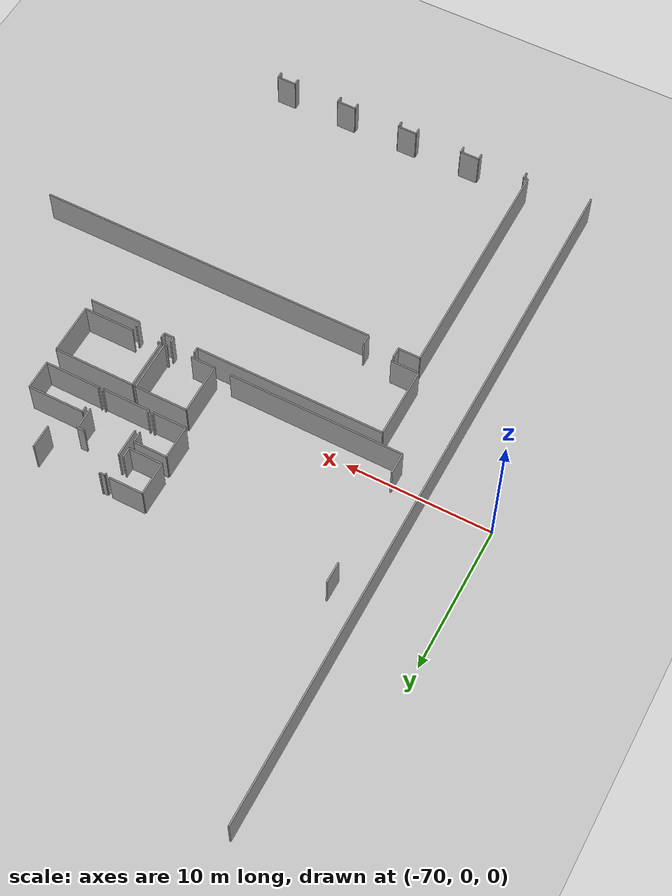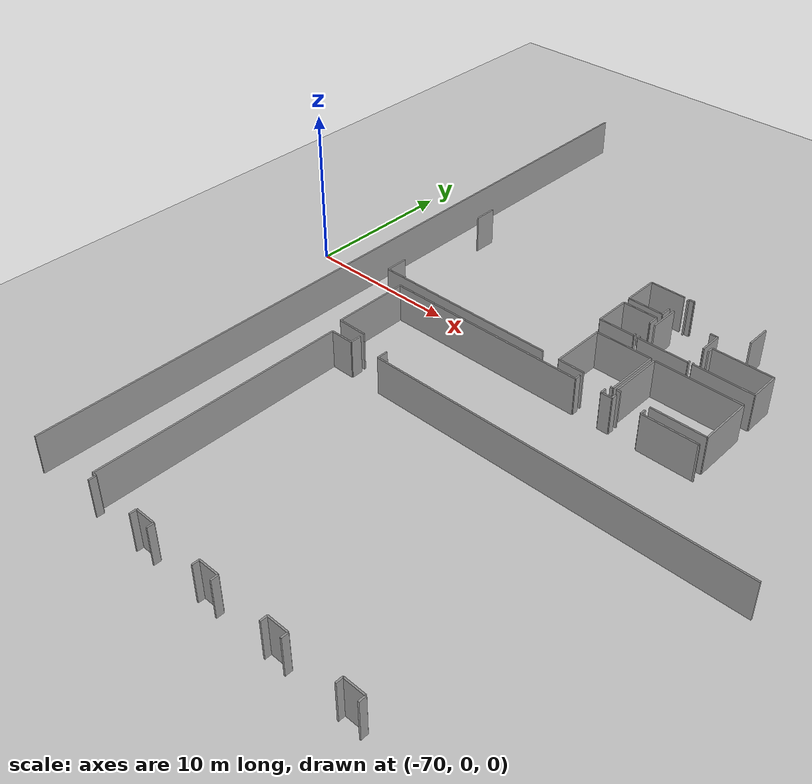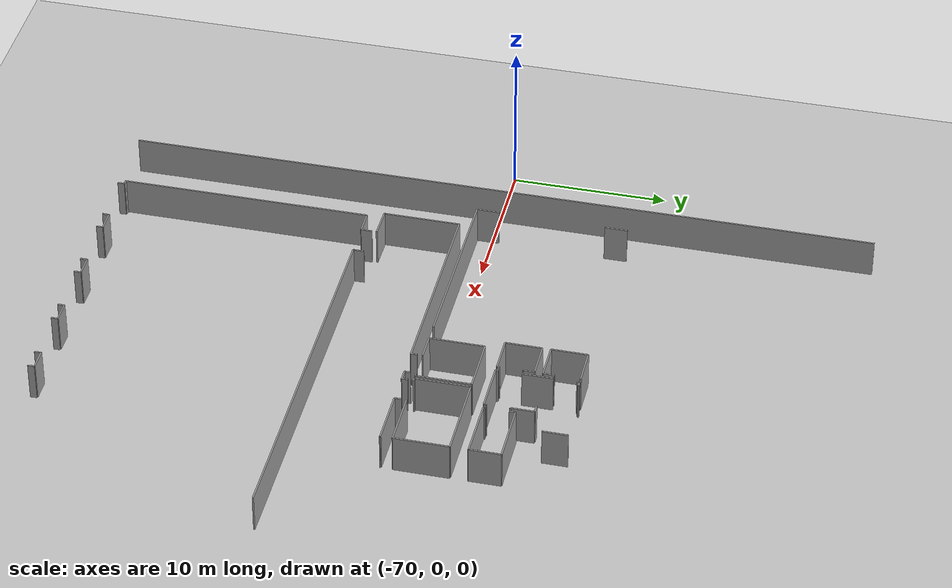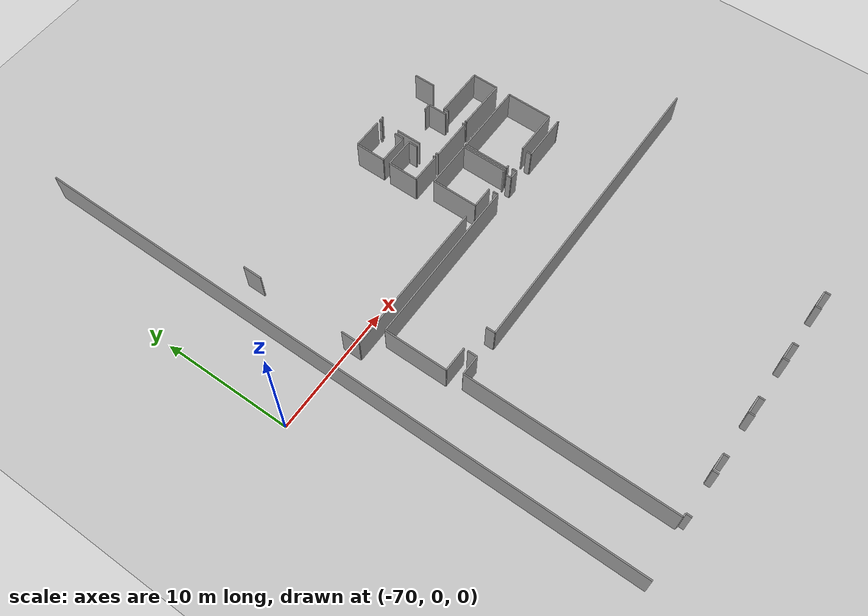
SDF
<sdf version="1.6">
 <world name="default">
  <model name="ground_plane">
   <static>1</static>
   <link name="link">
    <collision name="collision">
     <geometry><plane><normal>0 0 1</normal><size>100 100</size></plane></geometry>
     <surface><friction><ode><mu>100</mu><mu2>50</mu2></ode></friction></surface>
    </collision>
    <visual name="visual">
     <cast_shadows>0</cast_shadows>
     <geometry><plane><normal>0 0 1</normal><size>100 100</size></plane></geometry>
     <material>
      <script><uri>file://media/materials/scripts/gazebo.material</uri><name>Gazebo/Grey</name></script>
     </material>
    </visual>
   </link>
  </model>
  <model name="0510032197_A_40_1_105">
   <static>1</static>
   <link name="Wall_326">
    <collision name="Wall_326_Collision">
     <geometry><box><size>3.50271355762 0.1 2.5</size></box></geometry>
     <pose>1.75135677881 0 1.25 0 0 0</pose>
    </collision>
    <visual name="Wall_326_Visual">
     <pose>1.75135677881 0 1.25 0 0 0</pose>
     <geometry><box><size>3.50271355762 0.1 2.5</size></box></geometry>
     <material>
      <script><uri>file://media/materials/scripts/gazebo.material</uri><name>Gazebo/Grey</name></script>
      <ambient>1 1 1 1</ambient>
     </material>
    </visual>
    <pose>15.3137431843 -25.2381194474 0 0 0 1.57079632679</pose>
   </link>
   <link name="Wall_327">
    <collision name="Wall_327_Collision">
     <geometry><box><size>3.62498252393 0.1 2.5</size></box></geometry>
     <pose>1.81249126196 0 1.25 0 0 0</pose>
    </collision>
    <visual name="Wall_327_Visual">
     <pose>1.81249126196 0 1.25 0 0 0</pose>
     <geometry><box><size>3.62498252393 0.1 2.5</size></box></geometry>
     <material>
      <script><uri>file://media/materials/scripts/gazebo.material</uri><name>Gazebo/Grey</name></script>
      <ambient>1 1 1 1</ambient>
     </material>
    </visual>
    <pose>15.3137431843 -21.7354058898 0 0 0 0.0</pose>
   </link>
   <link name="Wall_328">
    <collision name="Wall_328_Collision">
     <geometry><box><size>3.51326275118 0.1 2.5</size></box></geometry>
     <pose>1.75663137559 0 1.25 0 0 0</pose>
    </collision>
    <visual name="Wall_328_Visual">
     <pose>1.75663137559 0 1.25 0 0 0</pose>
     <geometry><box><size>3.51326275118 0.1 2.5</size></box></geometry>
     <material>
      <script><uri>file://media/materials/scripts/gazebo.material</uri><name>Gazebo/Grey</name></script>
      <ambient>1 1 1 1</ambient>
     </material>
    </visual>
    <pose>18.9387257083 -21.7354058898 0 0 0 -1.57079632679</pose>
   </link>
   <link name="Wall_329">
    <collision name="Wall_329_Collision">
     <geometry><box><size>0.174760736664 0.1 2.5</size></box></geometry>
     <pose>0.0873803683321 0 1.25 0 0 0</pose>
    </collision>
    <visual name="Wall_329_Visual">
     <pose>0.0873803683321 0 1.25 0 0 0</pose>
     <geometry><box><size>0.174760736664 0.1 2.5</size></box></geometry>
     <material>
      <script><uri>file://media/materials/scripts/gazebo.material</uri><name>Gazebo/Grey</name></script>
      <ambient>1 1 1 1</ambient>
     </material>
    </visual>
    <pose>18.9387257083 -25.2486686409 0 0 0 3.14159265359</pose>
   </link>
   <link name="Wall_330">
    <collision name="Wall_330_Collision">
     <geometry><box><size>1.68345556729 0.1 2.5</size></box></geometry>
     <pose>0.841727783643 0 1.25 0 0 0</pose>
    </collision>
    <visual name="Wall_330_Visual">
     <pose>0.841727783643 0 1.25 0 0 0</pose>
     <geometry><box><size>1.68345556729 0.1 2.5</size></box></geometry>
     <material>
      <script><uri>file://media/materials/scripts/gazebo.material</uri><name>Gazebo/Grey</name></script>
      <ambient>1 1 1 1</ambient>
     </material>
    </visual>
    <pose>16.9971656986 -25.2486686409 0 0 0 3.13532621995</pose>
   </link>
   <link name="Wall_331">
    <collision name="Wall_331_Collision">
     <geometry><box><size>3.4837758487 0.1 2.5</size></box></geometry>
     <pose>1.74188792435 0 1.25 0 0 0</pose>
    </collision>
    <visual name="Wall_331_Visual">
     <pose>1.74188792435 0 1.25 0 0 0</pose>
     <geometry><box><size>3.4837758487 0.1 2.5</size></box></geometry>
     <material>
      <script><uri>file://media/materials/scripts/gazebo.material</uri><name>Gazebo/Grey</name></script>
      <ambient>1 1 1 1</ambient>
     </material>
    </visual>
    <pose>19.1816113575 -25.2322729064 0 0 0 1.57079632679</pose>
   </link>
   <link name="Wall_332">
    <collision name="Wall_332_Collision">
     <geometry><box><size>5.5500197003 0.1 2.5</size></box></geometry>
     <pose>2.77500985015 0 1.25 0 0 0</pose>
    </collision>
    <visual name="Wall_332_Visual">
     <pose>2.77500985015 0 1.25 0 0 0</pose>
     <geometry><box><size>5.5500197003 0.1 2.5</size></box></geometry>
     <material>
      <script><uri>file://media/materials/scripts/gazebo.material</uri><name>Gazebo/Grey</name></script>
      <ambient>1 1 1 1</ambient>
     </material>
    </visual>
    <pose>19.1816113575 -21.7484970577 0 0 0 0.0</pose>
   </link>
   <link name="Wall_333">
    <collision name="Wall_333_Collision">
     <geometry><box><size>3.48097967692 0.1 2.5</size></box></geometry>
     <pose>1.74048983846 0 1.25 0 0 0</pose>
    </collision>
    <visual name="Wall_333_Visual">
     <pose>1.74048983846 0 1.25 0 0 0</pose>
     <geometry><box><size>3.48097967692 0.1 2.5</size></box></geometry>
     <material>
      <script><uri>file://media/materials/scripts/gazebo.material</uri><name>Gazebo/Grey</name></script>
      <ambient>1 1 1 1</ambient>
     </material>
    </visual>
    <pose>24.7316310578 -21.7484970577 0 0 0 -1.57079632679</pose>
   </link>
   <link name="Wall_334">
    <collision name="Wall_334_Collision">
     <geometry><box><size>3.4880972051 0.1 2.5</size></box></geometry>
     <pose>1.74404860255 0 1.25 0 0 0</pose>
    </collision>
    <visual name="Wall_334_Visual">
     <pose>1.74404860255 0 1.25 0 0 0</pose>
     <geometry><box><size>3.4880972051 0.1 2.5</size></box></geometry>
     <material>
      <script><uri>file://media/materials/scripts/gazebo.material</uri><name>Gazebo/Grey</name></script>
      <ambient>1 1 1 1</ambient>
     </material>
    </visual>
    <pose>24.7316310578 -25.2294767346 0 0 0 3.14159265359</pose>
   </link>
   <link name="Wall_335">
    <collision name="Wall_335_Collision">
     <geometry><box><size>0.233878355983 0.1 2.5</size></box></geometry>
     <pose>0.116939177992 0 1.25 0 0 0</pose>
    </collision>
    <visual name="Wall_335_Visual">
     <pose>0.116939177992 0 1.25 0 0 0</pose>
     <geometry><box><size>0.233878355983 0.1 2.5</size></box></geometry>
     <material>
      <script><uri>file://media/materials/scripts/gazebo.material</uri><name>Gazebo/Grey</name></script>
      <ambient>1 1 1 1</ambient>
     </material>
    </visual>
    <pose>19.4154729979 -25.2294767346 0 0 0 -3.12963670156</pose>
   </link>
   <link name="Wall_336">
    <collision name="Wall_336_Collision">
     <geometry><box><size>16.0009659503 0.1 2.5</size></box></geometry>
     <pose>8.00048297513 0 1.25 0 0 0</pose>
    </collision>
    <visual name="Wall_336_Visual">
     <pose>8.00048297513 0 1.25 0 0 0</pose>
     <geometry><box><size>16.0009659503 0.1 2.5</size></box></geometry>
     <material>
      <script><uri>file://media/materials/scripts/gazebo.material</uri><name>Gazebo/Grey</name></script>
      <ambient>1 1 1 1</ambient>
     </material>
    </visual>
    <pose>4.3704165025 -47.8954994344 0 0 0 1.57079632679</pose>
   </link>
   <link name="Wall_337">
    <collision name="Wall_337_Collision">
     <geometry><box><size>1.50243394044 0.1 2.5</size></box></geometry>
     <pose>0.751216970221 0 1.25 0 0 0</pose>
    </collision>
    <visual name="Wall_337_Visual">
     <pose>0.751216970221 0 1.25 0 0 0</pose>
     <geometry><box><size>1.50243394044 0.1 2.5</size></box></geometry>
     <material>
      <script><uri>file://media/materials/scripts/gazebo.material</uri><name>Gazebo/Grey</name></script>
      <ambient>1 1 1 1</ambient>
     </material>
    </visual>
    <pose>4.3704165025 -31.8945334842 0 0 0 0.0</pose>
   </link>
   <link name="Wall_338">
    <collision name="Wall_338_Collision">
     <geometry><box><size>0.707431462017 0.1 2.5</size></box></geometry>
     <pose>0.353715731008 0 1.25 0 0 0</pose>
    </collision>
    <visual name="Wall_338_Visual">
     <pose>0.353715731008 0 1.25 0 0 0</pose>
     <geometry><box><size>0.707431462017 0.1 2.5</size></box></geometry>
     <material>
      <script><uri>file://media/materials/scripts/gazebo.material</uri><name>Gazebo/Grey</name></script>
      <ambient>1 1 1 1</ambient>
     </material>
    </visual>
    <pose>5.87285044294 -31.8945334842 0 0 0 1.57079632679</pose>
   </link>
   <link name="Wall_339">
    <collision name="Wall_339_Collision">
     <geometry><box><size>0.696373873588 0.1 2.5</size></box></geometry>
     <pose>0.348186936794 0 1.25 0 0 0</pose>
    </collision>
    <visual name="Wall_339_Visual">
     <pose>0.348186936794 0 1.25 0 0 0</pose>
     <geometry><box><size>0.696373873588 0.1 2.5</size></box></geometry>
     <material>
      <script><uri>file://media/materials/scripts/gazebo.material</uri><name>Gazebo/Grey</name></script>
      <ambient>1 1 1 1</ambient>
     </material>
    </visual>
    <pose>7.96718311112 -31.1871020221 0 0 0 -1.57079632679</pose>
   </link>
   <link name="Wall_340">
    <collision name="Wall_340_Collision">
     <geometry><box><size>23.6812872558 0.1 2.5</size></box></geometry>
     <pose>11.8406436279 0 1.25 0 0 0</pose>
    </collision>
    <visual name="Wall_340_Visual">
     <pose>11.8406436279 0 1.25 0 0 0</pose>
     <geometry><box><size>23.6812872558 0.1 2.5</size></box></geometry>
     <material>
      <script><uri>file://media/materials/scripts/gazebo.material</uri><name>Gazebo/Grey</name></script>
      <ambient>1 1 1 1</ambient>
     </material>
    </visual>
    <pose>7.96718311112 -31.8834758957 0 0 0 0.0</pose>
   </link>
   <link name="Wall_350">
    <collision name="Wall_350_Collision">
     <geometry><box><size>0.428958171812 0.1 2.5</size></box></geometry>
     <pose>0.214479085906 0 1.25 0 0 0</pose>
    </collision>
    <visual name="Wall_350_Visual">
     <pose>0.214479085906 0 1.25 0 0 0</pose>
     <geometry><box><size>0.428958171812 0.1 2.5</size></box></geometry>
     <material>
      <script><uri>file://media/materials/scripts/gazebo.material</uri><name>Gazebo/Grey</name></script>
      <ambient>1 1 1 1</ambient>
     </material>
    </visual>
    <pose>23.2586840199 -48.3392010575 0 0 0 1.57079632679</pose>
   </link>
   <link name="Wall_351">
    <collision name="Wall_351_Collision">
     <geometry><box><size>1.3169969115 0.1 2.5</size></box></geometry>
     <pose>0.658498455751 0 1.25 0 0 0</pose>
    </collision>
    <visual name="Wall_351_Visual">
     <pose>0.658498455751 0 1.25 0 0 0</pose>
     <geometry><box><size>1.3169969115 0.1 2.5</size></box></geometry>
     <material>
      <script><uri>file://media/materials/scripts/gazebo.material</uri><name>Gazebo/Grey</name></script>
      <ambient>1 1 1 1</ambient>
     </material>
    </visual>
    <pose>23.2586840199 -47.9102428856 0 0 0 3.14159265359</pose>
   </link>
   <link name="Wall_352">
    <collision name="Wall_352_Collision">
     <geometry><box><size>0.427941382071 0.1 2.5</size></box></geometry>
     <pose>0.213970691036 0 1.25 0 0 0</pose>
    </collision>
    <visual name="Wall_352_Visual">
     <pose>0.213970691036 0 1.25 0 0 0</pose>
     <geometry><box><size>0.427941382071 0.1 2.5</size></box></geometry>
     <material>
      <script><uri>file://media/materials/scripts/gazebo.material</uri><name>Gazebo/Grey</name></script>
      <ambient>1 1 1 1</ambient>
     </material>
    </visual>
    <pose>21.9416871084 -47.9102428856 0 0 0 -1.57079632679</pose>
   </link>
   <link name="Wall_353">
    <collision name="Wall_353_Collision">
     <geometry><box><size>0.419679965429 0.1 2.5</size></box></geometry>
     <pose>0.209839982715 0 1.25 0 0 0</pose>
    </collision>
    <visual name="Wall_353_Visual">
     <pose>0.209839982715 0 1.25 0 0 0</pose>
     <geometry><box><size>0.419679965429 0.1 2.5</size></box></geometry>
     <material>
      <script><uri>file://media/materials/scripts/gazebo.material</uri><name>Gazebo/Grey</name></script>
      <ambient>1 1 1 1</ambient>
     </material>
    </visual>
    <pose>18.6212331118 -48.3381842677 0 0 0 1.57079632679</pose>
   </link>
   <link name="Wall_354">
    <collision name="Wall_354_Collision">
     <geometry><box><size>1.32055567559 0.1 2.5</size></box></geometry>
     <pose>0.660277837797 0 1.25 0 0 0</pose>
    </collision>
    <visual name="Wall_354_Visual">
     <pose>0.660277837797 0 1.25 0 0 0</pose>
     <geometry><box><size>1.32055567559 0.1 2.5</size></box></geometry>
     <material>
      <script><uri>file://media/materials/scripts/gazebo.material</uri><name>Gazebo/Grey</name></script>
      <ambient>1 1 1 1</ambient>
     </material>
    </visual>
    <pose>18.6212331118 -47.9185043023 0 0 0 3.14159265359</pose>
   </link>
   <link name="Wall_355">
    <collision name="Wall_355_Collision">
     <geometry><box><size>0.427941382071 0.1 2.5</size></box></geometry>
     <pose>0.213970691036 0 1.25 0 0 0</pose>
    </collision>
    <visual name="Wall_355_Visual">
     <pose>0.213970691036 0 1.25 0 0 0</pose>
     <geometry><box><size>0.427941382071 0.1 2.5</size></box></geometry>
     <material>
      <script><uri>file://media/materials/scripts/gazebo.material</uri><name>Gazebo/Grey</name></script>
      <ambient>1 1 1 1</ambient>
     </material>
    </visual>
    <pose>17.3006774362 -47.9185043023 0 0 0 -1.57079632679</pose>
   </link>
   <link name="Wall_356">
    <collision name="Wall_356_Collision">
     <geometry><box><size>0.444591314074 0.1 2.5</size></box></geometry>
     <pose>0.222295657037 0 1.25 0 0 0</pose>
    </collision>
    <visual name="Wall_356_Visual">
     <pose>0.222295657037 0 1.25 0 0 0</pose>
     <geometry><box><size>0.444591314074 0.1 2.5</size></box></geometry>
     <material>
      <script><uri>file://media/materials/scripts/gazebo.material</uri><name>Gazebo/Grey</name></script>
      <ambient>1 1 1 1</ambient>
     </material>
    </visual>
    <pose>13.9725975165 -48.3464456844 0 0 0 1.57079632679</pose>
   </link>
   <link name="Wall_357">
    <collision name="Wall_357_Collision">
     <geometry><box><size>1.31712401022 0.1 2.5</size></box></geometry>
     <pose>0.658562005109 0 1.25 0 0 0</pose>
    </collision>
    <visual name="Wall_357_Visual">
     <pose>0.658562005109 0 1.25 0 0 0</pose>
     <geometry><box><size>1.31712401022 0.1 2.5</size></box></geometry>
     <material>
      <script><uri>file://media/materials/scripts/gazebo.material</uri><name>Gazebo/Grey</name></script>
      <ambient>1 1 1 1</ambient>
     </material>
    </visual>
    <pose>13.9725975165 -47.9018543703 0 0 0 3.14159265359</pose>
   </link>
   <link name="Wall_358">
    <collision name="Wall_358_Collision">
     <geometry><box><size>0.440397056394 0.1 2.5</size></box></geometry>
     <pose>0.220198528197 0 1.25 0 0 0</pose>
    </collision>
    <visual name="Wall_358_Visual">
     <pose>0.220198528197 0 1.25 0 0 0</pose>
     <geometry><box><size>0.440397056394 0.1 2.5</size></box></geometry>
     <material>
      <script><uri>file://media/materials/scripts/gazebo.material</uri><name>Gazebo/Grey</name></script>
      <ambient>1 1 1 1</ambient>
     </material>
    </visual>
    <pose>12.6554735063 -47.9018543703 0 0 0 -1.57079632679</pose>
   </link>
   <link name="Wall_359">
    <collision name="Wall_359_Collision">
     <geometry><box><size>0.421840643628 0.1 2.5</size></box></geometry>
     <pose>0.210920321814 0 1.25 0 0 0</pose>
    </collision>
    <visual name="Wall_359_Visual">
     <pose>0.210920321814 0 1.25 0 0 0</pose>
     <geometry><box><size>0.421840643628 0.1 2.5</size></box></geometry>
     <material>
      <script><uri>file://media/materials/scripts/gazebo.material</uri><name>Gazebo/Grey</name></script>
      <ambient>1 1 1 1</ambient>
     </material>
    </visual>
    <pose>9.30743908794 -48.3422514267 0 0 0 1.57079632679</pose>
   </link>
   <link name="Wall_360">
    <collision name="Wall_360_Collision">
     <geometry><box><size>1.31788660252 0.1 2.5</size></box></geometry>
     <pose>0.658943301262 0 1.25 0 0 0</pose>
    </collision>
    <visual name="Wall_360_Visual">
     <pose>0.658943301262 0 1.25 0 0 0</pose>
     <geometry><box><size>1.31788660252 0.1 2.5</size></box></geometry>
     <material>
      <script><uri>file://media/materials/scripts/gazebo.material</uri><name>Gazebo/Grey</name></script>
      <ambient>1 1 1 1</ambient>
     </material>
    </visual>
    <pose>9.30743908794 -47.9204107831 0 0 0 3.14159265359</pose>
   </link>
   <link name="Wall_361">
    <collision name="Wall_361_Collision">
     <geometry><box><size>0.430229158988 0.1 2.5</size></box></geometry>
     <pose>0.215114579494 0 1.25 0 0 0</pose>
    </collision>
    <visual name="Wall_361_Visual">
     <pose>0.215114579494 0 1.25 0 0 0</pose>
     <geometry><box><size>0.430229158988 0.1 2.5</size></box></geometry>
     <material>
      <script><uri>file://media/materials/scripts/gazebo.material</uri><name>Gazebo/Grey</name></script>
      <ambient>1 1 1 1</ambient>
     </material>
    </visual>
    <pose>7.98955248542 -47.9204107831 0 0 0 -1.57079632679</pose>
   </link>
   <link name="Wall_362">
    <collision name="Wall_362_Collision">
     <geometry><box><size>0.432135639751 0.1 2.5</size></box></geometry>
     <pose>0.216067819876 0 1.25 0 0 0</pose>
    </collision>
    <visual name="Wall_362_Visual">
     <pose>0.216067819876 0 1.25 0 0 0</pose>
     <geometry><box><size>0.432135639751 0.1 2.5</size></box></geometry>
     <material>
      <script><uri>file://media/materials/scripts/gazebo.material</uri><name>Gazebo/Grey</name></script>
      <ambient>1 1 1 1</ambient>
     </material>
    </visual>
    <pose>4.66566682342 -48.350639942 0 0 0 1.57079632679</pose>
   </link>
   <link name="Wall_363">
    <collision name="Wall_363_Collision">
     <geometry><box><size>0.296145194038 0.1 2.5</size></box></geometry>
     <pose>0.148072597019 0 1.25 0 0 0</pose>
    </collision>
    <visual name="Wall_363_Visual">
     <pose>0.148072597019 0 1.25 0 0 0</pose>
     <geometry><box><size>0.296145194038 0.1 2.5</size></box></geometry>
     <material>
      <script><uri>file://media/materials/scripts/gazebo.material</uri><name>Gazebo/Grey</name></script>
      <ambient>1 1 1 1</ambient>
     </material>
    </visual>
    <pose>4.66566682342 -47.9185043023 0 0 0 3.06383327087</pose>
   </link>
   <link name="Wall_395">
    <collision name="Wall_395_Collision">
     <geometry><box><size>4.88338692663 0.1 2.5</size></box></geometry>
     <pose>2.44169346331 0 1.25 0 0 0</pose>
    </collision>
    <visual name="Wall_395_Visual">
     <pose>2.44169346331 0 1.25 0 0 0</pose>
     <geometry><box><size>4.88338692663 0.1 2.5</size></box></geometry>
     <material>
      <script><uri>file://media/materials/scripts/gazebo.material</uri><name>Gazebo/Grey</name></script>
      <ambient>1 1 1 1</ambient>
     </material>
    </visual>
    <pose>3.94705067426 -30.8553743693 0 0 0 1.57079632679</pose>
   </link>
   <link name="Wall_396">
    <collision name="Wall_396_Collision">
     <geometry><box><size>13.0441413846 0.1 2.5</size></box></geometry>
     <pose>6.52207069231 0 1.25 0 0 0</pose>
    </collision>
    <visual name="Wall_396_Visual">
     <pose>6.52207069231 0 1.25 0 0 0</pose>
     <geometry><box><size>13.0441413846 0.1 2.5</size></box></geometry>
     <material>
      <script><uri>file://media/materials/scripts/gazebo.material</uri><name>Gazebo/Grey</name></script>
      <ambient>1 1 1 1</ambient>
     </material>
    </visual>
    <pose>3.94705067426 -25.9719874426 0 0 0 0.0</pose>
   </link>
   <link name="Wall_397">
    <collision name="Wall_397_Collision">
     <geometry><box><size>0.392480839868 0.1 2.5</size></box></geometry>
     <pose>0.196240419934 0 1.25 0 0 0</pose>
    </collision>
    <visual name="Wall_397_Visual">
     <pose>0.196240419934 0 1.25 0 0 0</pose>
     <geometry><box><size>0.392480839868 0.1 2.5</size></box></geometry>
     <material>
      <script><uri>file://media/materials/scripts/gazebo.material</uri><name>Gazebo/Grey</name></script>
      <ambient>1 1 1 1</ambient>
     </material>
    </visual>
    <pose>16.9911920589 -25.9719874426 0 0 0 1.57079632679</pose>
   </link>
   <link name="Wall_398">
    <collision name="Wall_398_Collision">
     <geometry><box><size>0.38294843605 0.1 2.5</size></box></geometry>
     <pose>0.191474218025 0 1.25 0 0 0</pose>
    </collision>
    <visual name="Wall_398_Visual">
     <pose>0.191474218025 0 1.25 0 0 0</pose>
     <geometry><box><size>0.38294843605 0.1 2.5</size></box></geometry>
     <material>
      <script><uri>file://media/materials/scripts/gazebo.material</uri><name>Gazebo/Grey</name></script>
      <ambient>1 1 1 1</ambient>
     </material>
    </visual>
    <pose>18.6906290116 -25.5795066028 0 0 0 -1.57079632679</pose>
   </link>
   <link name="Wall_399">
    <collision name="Wall_399_Collision">
     <geometry><box><size>0.688875049251 0.1 2.5</size></box></geometry>
     <pose>0.344437524625 0 1.25 0 0 0</pose>
    </collision>
    <visual name="Wall_399_Visual">
     <pose>0.344437524625 0 1.25 0 0 0</pose>
     <geometry><box><size>0.688875049251 0.1 2.5</size></box></geometry>
     <material>
      <script><uri>file://media/materials/scripts/gazebo.material</uri><name>Gazebo/Grey</name></script>
      <ambient>1 1 1 1</ambient>
     </material>
    </visual>
    <pose>18.6906290116 -25.9624550388 0 0 0 0.0</pose>
   </link>
   <link name="Wall_400">
    <collision name="Wall_400_Collision">
     <geometry><box><size>0.372780538644 0.1 2.5</size></box></geometry>
     <pose>0.186390269322 0 1.25 0 0 0</pose>
    </collision>
    <visual name="Wall_400_Visual">
     <pose>0.186390269322 0 1.25 0 0 0</pose>
     <geometry><box><size>0.372780538644 0.1 2.5</size></box></geometry>
     <material>
      <script><uri>file://media/materials/scripts/gazebo.material</uri><name>Gazebo/Grey</name></script>
      <ambient>1 1 1 1</ambient>
     </material>
    </visual>
    <pose>19.3795040608 -25.9624550388 0 0 0 1.57079632679</pose>
   </link>
   <link name="Wall_401">
    <collision name="Wall_401_Collision">
     <geometry><box><size>0.385617509119 0.1 2.5</size></box></geometry>
     <pose>0.19280875456 0 1.25 0 0 0</pose>
    </collision>
    <visual name="Wall_401_Visual">
     <pose>0.19280875456 0 1.25 0 0 0</pose>
     <geometry><box><size>0.385617509119 0.1 2.5</size></box></geometry>
     <material>
      <script><uri>file://media/materials/scripts/gazebo.material</uri><name>Gazebo/Grey</name></script>
      <ambient>1 1 1 1</ambient>
     </material>
    </visual>
    <pose>21.2095984952 -25.5896745002 0 0 0 -1.57079632679</pose>
   </link>
   <link name="Wall_402">
    <collision name="Wall_402_Collision">
     <geometry><box><size>3.52660811652 0.1 2.5</size></box></geometry>
     <pose>1.76330405826 0 1.25 0 0 0</pose>
    </collision>
    <visual name="Wall_402_Visual">
     <pose>1.76330405826 0 1.25 0 0 0</pose>
     <geometry><box><size>3.52660811652 0.1 2.5</size></box></geometry>
     <material>
      <script><uri>file://media/materials/scripts/gazebo.material</uri><name>Gazebo/Grey</name></script>
      <ambient>1 1 1 1</ambient>
     </material>
    </visual>
    <pose>21.2095984952 -25.9752920093 0 0 0 0.0</pose>
   </link>
   <link name="Wall_403">
    <collision name="Wall_403_Collision">
     <geometry><box><size>0.058465410084 0.1 2.5</size></box></geometry>
     <pose>0.029232705042 0 1.25 0 0 0</pose>
    </collision>
    <visual name="Wall_403_Visual">
     <pose>0.029232705042 0 1.25 0 0 0</pose>
     <geometry><box><size>0.058465410084 0.1 2.5</size></box></geometry>
     <material>
      <script><uri>file://media/materials/scripts/gazebo.material</uri><name>Gazebo/Grey</name></script>
      <ambient>1 1 1 1</ambient>
     </material>
    </visual>
    <pose>24.7362066117 -25.9752920093 0 0 0 -1.57079632679</pose>
   </link>
   <link name="Wall_414">
    <collision name="Wall_414_Collision">
     <geometry><box><size>1.92239268677 0.1 2.5</size></box></geometry>
     <pose>0.961196343386 0 1.25 0 0 0</pose>
    </collision>
    <visual name="Wall_414_Visual">
     <pose>0.961196343386 0 1.25 0 0 0</pose>
     <geometry><box><size>1.92239268677 0.1 2.5</size></box></geometry>
     <material>
      <script><uri>file://media/materials/scripts/gazebo.material</uri><name>Gazebo/Grey</name></script>
      <ambient>1 1 1 1</ambient>
     </material>
    </visual>
    <pose>5.86929167885 -30.8795231256 0 0 0 3.12903050036</pose>
   </link>
   <link name="Wall_415">
    <collision name="Wall_415_Collision">
     <geometry><box><size>1.44701889958 0.1 2.5</size></box></geometry>
     <pose>0.72350944979 0 1.25 0 0 0</pose>
    </collision>
    <visual name="Wall_415_Visual">
     <pose>0.72350944979 0 1.25 0 0 0</pose>
     <geometry><box><size>1.44701889958 0.1 2.5</size></box></geometry>
     <material>
      <script><uri>file://media/materials/scripts/gazebo.material</uri><name>Gazebo/Grey</name></script>
      <ambient>1 1 1 1</ambient>
     </material>
    </visual>
    <pose>2.19880781403 -25.1940161924 0 0 0 1.57079632679</pose>
   </link>
   <link name="Wall_416">
    <collision name="Wall_416_Collision">
     <geometry><box><size>1.46239784441 0.1 2.5</size></box></geometry>
     <pose>0.731198922203 0 1.25 0 0 0</pose>
    </collision>
    <visual name="Wall_416_Visual">
     <pose>0.731198922203 0 1.25 0 0 0</pose>
     <geometry><box><size>1.46239784441 0.1 2.5</size></box></geometry>
     <material>
      <script><uri>file://media/materials/scripts/gazebo.material</uri><name>Gazebo/Grey</name></script>
      <ambient>1 1 1 1</ambient>
     </material>
    </visual>
    <pose>2.19880781403 -16.8956138233 0 0 0 1.57079632679</pose>
   </link>
   <link name="Wall_420">
    <collision name="Wall_420_Collision">
     <geometry><box><size>12.0070743902 0.1 2.5</size></box></geometry>
     <pose>6.00353719511 0 1.25 0 0 0</pose>
    </collision>
    <visual name="Wall_420_Visual">
     <pose>6.00353719511 0 1.25 0 0 0</pose>
     <geometry><box><size>12.0070743902 0.1 2.5</size></box></geometry>
     <material>
      <script><uri>file://media/materials/scripts/gazebo.material</uri><name>Gazebo/Grey</name></script>
      <ambient>1 1 1 1</ambient>
     </material>
    </visual>
    <pose>14.2058236632 -25.2315103141 0 0 0 3.13846997929</pose>
   </link>
   <link name="Wall_421">
    <collision name="Wall_421_Collision">
     <geometry><box><size>2.3070959214 0.1 2.5</size></box></geometry>
     <pose>1.1535479607 0 1.25 0 0 0</pose>
    </collision>
    <visual name="Wall_421_Visual">
     <pose>1.1535479607 0 1.25 0 0 0</pose>
     <geometry><box><size>2.3070959214 0.1 2.5</size></box></geometry>
     <material>
      <script><uri>file://media/materials/scripts/gazebo.material</uri><name>Gazebo/Grey</name></script>
      <ambient>1 1 1 1</ambient>
     </material>
    </visual>
    <pose>14.6839690388 -17.7537843643 0 0 0 1.57079632679</pose>
   </link>
   <link name="Wall_422">
    <collision name="Wall_422_Collision">
     <geometry><box><size>2.32145807649 0.1 2.5</size></box></geometry>
     <pose>1.16072903824 0 1.25 0 0 0</pose>
    </collision>
    <visual name="Wall_422_Visual">
     <pose>1.16072903824 0 1.25 0 0 0</pose>
     <geometry><box><size>2.32145807649 0.1 2.5</size></box></geometry>
     <material>
      <script><uri>file://media/materials/scripts/gazebo.material</uri><name>Gazebo/Grey</name></script>
      <ambient>1 1 1 1</ambient>
     </material>
    </visual>
    <pose>14.6839690388 -15.4466884429 0 0 0 0.0</pose>
   </link>
   <link name="Wall_424">
    <collision name="Wall_424_Collision">
     <geometry><box><size>0.719887136339 0.1 2.5</size></box></geometry>
     <pose>0.359943568169 0 1.25 0 0 0</pose>
    </collision>
    <visual name="Wall_424_Visual">
     <pose>0.359943568169 0 1.25 0 0 0</pose>
     <geometry><box><size>0.719887136339 0.1 2.5</size></box></geometry>
     <material>
      <script><uri>file://media/materials/scripts/gazebo.material</uri><name>Gazebo/Grey</name></script>
      <ambient>1 1 1 1</ambient>
     </material>
    </visual>
    <pose>17.0054271152 -17.0504200613 0 0 0 -1.57079632679</pose>
   </link>
   <link name="Wall_425">
    <collision name="Wall_425_Collision">
     <geometry><box><size>2.32151687586 0.1 2.5</size></box></geometry>
     <pose>1.16075843793 0 1.25 0 0 0</pose>
    </collision>
    <visual name="Wall_425_Visual">
     <pose>1.16075843793 0 1.25 0 0 0</pose>
     <geometry><box><size>2.32151687586 0.1 2.5</size></box></geometry>
     <material>
      <script><uri>file://media/materials/scripts/gazebo.material</uri><name>Gazebo/Grey</name></script>
      <ambient>1 1 1 1</ambient>
     </material>
    </visual>
    <pose>17.0054271152 -17.7703071976 0 0 0 3.13447533605</pose>
   </link>
   <link name="Wall_426">
    <collision name="Wall_426_Collision">
     <geometry><box><size>2.32463554443 0.1 2.5</size></box></geometry>
     <pose>1.16231777221 0 1.25 0 0 0</pose>
    </collision>
    <visual name="Wall_426_Visual">
     <pose>1.16231777221 0 1.25 0 0 0</pose>
     <geometry><box><size>2.32463554443 0.1 2.5</size></box></geometry>
     <material>
      <script><uri>file://media/materials/scripts/gazebo.material</uri><name>Gazebo/Grey</name></script>
      <ambient>1 1 1 1</ambient>
     </material>
    </visual>
    <pose>14.69871249 -20.6155390892 0 0 0 1.57079632679</pose>
   </link>
   <link name="Wall_427">
    <collision name="Wall_427_Collision">
     <geometry><box><size>2.28523494198 0.1 2.5</size></box></geometry>
     <pose>1.14261747099 0 1.25 0 0 0</pose>
    </collision>
    <visual name="Wall_427_Visual">
     <pose>1.14261747099 0 1.25 0 0 0</pose>
     <geometry><box><size>2.28523494198 0.1 2.5</size></box></geometry>
     <material>
      <script><uri>file://media/materials/scripts/gazebo.material</uri><name>Gazebo/Grey</name></script>
      <ambient>1 1 1 1</ambient>
     </material>
    </visual>
    <pose>14.69871249 -18.2909035448 0 0 0 0.0</pose>
   </link>
   <link name="Wall_428">
    <collision name="Wall_428_Collision">
     <geometry><box><size>0.704889487665 0.1 2.5</size></box></geometry>
     <pose>0.352444743833 0 1.25 0 0 0</pose>
    </collision>
    <visual name="Wall_428_Visual">
     <pose>0.352444743833 0 1.25 0 0 0</pose>
     <geometry><box><size>0.704889487665 0.1 2.5</size></box></geometry>
     <material>
      <script><uri>file://media/materials/scripts/gazebo.material</uri><name>Gazebo/Grey</name></script>
      <ambient>1 1 1 1</ambient>
     </material>
    </visual>
    <pose>16.983947432 -18.2909035448 0 0 0 -1.57079632679</pose>
   </link>
   <link name="Wall_429">
    <collision name="Wall_429_Collision">
     <geometry><box><size>0.0217338807051 0.1 2.5</size></box></geometry>
     <pose>0.0108669403526 0 1.25 0 0 0</pose>
    </collision>
    <visual name="Wall_429_Visual">
     <pose>0.0108669403526 0 1.25 0 0 0</pose>
     <geometry><box><size>0.0217338807051 0.1 2.5</size></box></geometry>
     <material>
      <script><uri>file://media/materials/scripts/gazebo.material</uri><name>Gazebo/Grey</name></script>
      <ambient>1 1 1 1</ambient>
     </material>
    </visual>
    <pose>16.983947432 -18.9957930324 0 0 0 0.0</pose>
   </link>
   <link name="Wall_430">
    <collision name="Wall_430_Collision">
     <geometry><box><size>0.189504187903 0.1 2.5</size></box></geometry>
     <pose>0.0947520939514 0 1.25 0 0 0</pose>
    </collision>
    <visual name="Wall_430_Visual">
     <pose>0.0947520939514 0 1.25 0 0 0</pose>
     <geometry><box><size>0.189504187903 0.1 2.5</size></box></geometry>
     <material>
      <script><uri>file://media/materials/scripts/gazebo.material</uri><name>Gazebo/Grey</name></script>
      <ambient>1 1 1 1</ambient>
     </material>
    </visual>
    <pose>17.0056813127 -20.427051691 0 0 0 -1.57079632679</pose>
   </link>
   <link name="Wall_431">
    <collision name="Wall_431_Collision">
     <geometry><box><size>2.30696904676 0.1 2.5</size></box></geometry>
     <pose>1.15348452338 0 1.25 0 0 0</pose>
    </collision>
    <visual name="Wall_431_Visual">
     <pose>1.15348452338 0 1.25 0 0 0</pose>
     <geometry><box><size>2.30696904676 0.1 2.5</size></box></geometry>
     <material>
      <script><uri>file://media/materials/scripts/gazebo.material</uri><name>Gazebo/Grey</name></script>
      <ambient>1 1 1 1</ambient>
     </material>
    </visual>
    <pose>17.0056813127 -20.616555879 0 0 0 3.14115190655</pose>
   </link>
   <link name="Wall_432">
    <collision name="Wall_432_Collision">
     <geometry><box><size>0.186835114834 0.1 2.5</size></box></geometry>
     <pose>0.0934175574168 0 1.25 0 0 0</pose>
    </collision>
    <visual name="Wall_432_Visual">
     <pose>0.0934175574168 0 1.25 0 0 0</pose>
     <geometry><box><size>0.186835114834 0.1 2.5</size></box></geometry>
     <material>
      <script><uri>file://media/materials/scripts/gazebo.material</uri><name>Gazebo/Grey</name></script>
      <ambient>1 1 1 1</ambient>
     </material>
    </visual>
    <pose>17.3188525528 -20.6330787122 0 0 0 1.57079632679</pose>
   </link>
   <link name="Wall_433">
    <collision name="Wall_433_Collision">
     <geometry><box><size>1.95401568398 0.1 2.5</size></box></geometry>
     <pose>0.977007841991 0 1.25 0 0 0</pose>
    </collision>
    <visual name="Wall_433_Visual">
     <pose>0.977007841991 0 1.25 0 0 0</pose>
     <geometry><box><size>1.95401568398 0.1 2.5</size></box></geometry>
     <material>
      <script><uri>file://media/materials/scripts/gazebo.material</uri><name>Gazebo/Grey</name></script>
      <ambient>1 1 1 1</ambient>
     </material>
    </visual>
    <pose>17.3188525528 -19.0065964234 0 0 0 1.57079632679</pose>
   </link>
   <link name="Wall_434">
    <collision name="Wall_434_Collision">
     <geometry><box><size>0.164847036693 0.1 2.5</size></box></geometry>
     <pose>0.0824235183467 0 1.25 0 0 0</pose>
    </collision>
    <visual name="Wall_434_Visual">
     <pose>0.0824235183467 0 1.25 0 0 0</pose>
     <geometry><box><size>0.164847036693 0.1 2.5</size></box></geometry>
     <material>
      <script><uri>file://media/materials/scripts/gazebo.material</uri><name>Gazebo/Grey</name></script>
      <ambient>1 1 1 1</ambient>
     </material>
    </visual>
    <pose>17.3188525528 -15.6218304757 0 0 0 1.57079632679</pose>
   </link>
   <link name="Wall_435">
    <collision name="Wall_435_Collision">
     <geometry><box><size>0.329694073387 0.1 2.5</size></box></geometry>
     <pose>0.164847036693 0 1.25 0 0 0</pose>
    </collision>
    <visual name="Wall_435_Visual">
     <pose>0.164847036693 0 1.25 0 0 0</pose>
     <geometry><box><size>0.329694073387 0.1 2.5</size></box></geometry>
     <material>
      <script><uri>file://media/materials/scripts/gazebo.material</uri><name>Gazebo/Grey</name></script>
      <ambient>1 1 1 1</ambient>
     </material>
    </visual>
    <pose>17.3188525528 -15.456983439 0 0 0 0.0</pose>
   </link>
   <link name="Wall_436">
    <collision name="Wall_436_Collision">
     <geometry><box><size>0.0770218228498 0.1 2.5</size></box></geometry>
     <pose>0.0385109114249 0 1.25 0 0 0</pose>
    </collision>
    <visual name="Wall_436_Visual">
     <pose>0.0385109114249 0 1.25 0 0 0</pose>
     <geometry><box><size>0.0770218228498 0.1 2.5</size></box></geometry>
     <material>
      <script><uri>file://media/materials/scripts/gazebo.material</uri><name>Gazebo/Grey</name></script>
      <ambient>1 1 1 1</ambient>
     </material>
    </visual>
    <pose>17.6485466262 -15.456983439 0 0 0 1.57079632679</pose>
   </link>
   <link name="Wall_440">
    <collision name="Wall_440_Collision">
     <geometry><box><size>0.487550680614 0.1 2.5</size></box></geometry>
     <pose>0.243775340307 0 1.25 0 0 0</pose>
    </collision>
    <visual name="Wall_440_Visual">
     <pose>0.243775340307 0 1.25 0 0 0</pose>
     <geometry><box><size>0.487550680614 0.1 2.5</size></box></geometry>
     <material>
      <script><uri>file://media/materials/scripts/gazebo.material</uri><name>Gazebo/Grey</name></script>
      <ambient>1 1 1 1</ambient>
     </material>
    </visual>
    <pose>20.0498226973 -17.5205582176 0 0 0 0.0</pose>
   </link>
   <link name="Wall_441">
    <collision name="Wall_441_Collision">
     <geometry><box><size>1.48057296102 0.1 2.5</size></box></geometry>
     <pose>0.740286480509 0 1.25 0 0 0</pose>
    </collision>
    <visual name="Wall_441_Visual">
     <pose>0.740286480509 0 1.25 0 0 0</pose>
     <geometry><box><size>1.48057296102 0.1 2.5</size></box></geometry>
     <material>
      <script><uri>file://media/materials/scripts/gazebo.material</uri><name>Gazebo/Grey</name></script>
      <ambient>1 1 1 1</ambient>
     </material>
    </visual>
    <pose>20.5373733779 -17.5205582176 0 0 0 -1.57079632679</pose>
   </link>
   <link name="Wall_442">
    <collision name="Wall_442_Collision">
     <geometry><box><size>0.0509665857472 0.1 2.5</size></box></geometry>
     <pose>0.0254832928736 0 1.25 0 0 0</pose>
    </collision>
    <visual name="Wall_442_Visual">
     <pose>0.0254832928736 0 1.25 0 0 0</pose>
     <geometry><box><size>0.0509665857472 0.1 2.5</size></box></geometry>
     <material>
      <script><uri>file://media/materials/scripts/gazebo.material</uri><name>Gazebo/Grey</name></script>
      <ambient>1 1 1 1</ambient>
     </material>
    </visual>
    <pose>20.5373733779 -19.0011311786 0 0 0 0.0</pose>
   </link>
   <link name="Wall_443">
    <collision name="Wall_443_Collision">
     <geometry><box><size>0.181369869978 0.1 2.5</size></box></geometry>
     <pose>0.090684934989 0 1.25 0 0 0</pose>
    </collision>
    <visual name="Wall_443_Visual">
     <pose>0.090684934989 0 1.25 0 0 0</pose>
     <geometry><box><size>0.181369869978 0.1 2.5</size></box></geometry>
     <material>
      <script><uri>file://media/materials/scripts/gazebo.material</uri><name>Gazebo/Grey</name></script>
      <ambient>1 1 1 1</ambient>
     </material>
    </visual>
    <pose>20.5883399636 -20.4517088423 0 0 0 -1.57079632679</pose>
   </link>
   <link name="Wall_444">
    <collision name="Wall_444_Collision">
     <geometry><box><size>3.26948741087 0.1 2.5</size></box></geometry>
     <pose>1.63474370544 0 1.25 0 0 0</pose>
    </collision>
    <visual name="Wall_444_Visual">
     <pose>1.63474370544 0 1.25 0 0 0</pose>
     <geometry><box><size>3.26948741087 0.1 2.5</size></box></geometry>
     <material>
      <script><uri>file://media/materials/scripts/gazebo.material</uri><name>Gazebo/Grey</name></script>
      <ambient>1 1 1 1</ambient>
     </material>
    </visual>
    <pose>20.5883399636 -20.6330787122 0 0 0 3.14159265359</pose>
   </link>
   <link name="Wall_445">
    <collision name="Wall_445_Collision">
     <geometry><box><size>0.126336125268 0.1 2.5</size></box></geometry>
     <pose>0.0631680626342 0 1.25 0 0 0</pose>
    </collision>
    <visual name="Wall_445_Visual">
     <pose>0.0631680626342 0 1.25 0 0 0</pose>
     <geometry><box><size>0.126336125268 0.1 2.5</size></box></geometry>
     <material>
      <script><uri>file://media/materials/scripts/gazebo.material</uri><name>Gazebo/Grey</name></script>
      <ambient>1 1 1 1</ambient>
     </material>
    </visual>
    <pose>20.8643983782 -20.59761817 0 0 0 1.57079632679</pose>
   </link>
   <link name="Wall_446">
    <collision name="Wall_446_Collision">
     <geometry><box><size>0.384600719379 0.1 2.5</size></box></geometry>
     <pose>0.192300359689 0 1.25 0 0 0</pose>
    </collision>
    <visual name="Wall_446_Visual">
     <pose>0.192300359689 0 1.25 0 0 0</pose>
     <geometry><box><size>0.384600719379 0.1 2.5</size></box></geometry>
     <material>
      <script><uri>file://media/materials/scripts/gazebo.material</uri><name>Gazebo/Grey</name></script>
      <ambient>1 1 1 1</ambient>
     </material>
    </visual>
    <pose>20.8643983782 -19.0120616683 0 0 0 1.57079632679</pose>
   </link>
   <link name="Wall_447">
    <collision name="Wall_447_Collision">
     <geometry><box><size>3.85604799248 0.1 2.5</size></box></geometry>
     <pose>1.92802399624 0 1.25 0 0 0</pose>
    </collision>
    <visual name="Wall_447_Visual">
     <pose>1.92802399624 0 1.25 0 0 0</pose>
     <geometry><box><size>3.85604799248 0.1 2.5</size></box></geometry>
     <material>
      <script><uri>file://media/materials/scripts/gazebo.material</uri><name>Gazebo/Grey</name></script>
      <ambient>1 1 1 1</ambient>
     </material>
    </visual>
    <pose>20.8643983782 -18.6274609489 0 0 0 0.0</pose>
   </link>
   <link name="Wall_448">
    <collision name="Wall_448_Collision">
     <geometry><box><size>1.9888407326 0.1 2.5</size></box></geometry>
     <pose>0.994420366299 0 1.25 0 0 0</pose>
    </collision>
    <visual name="Wall_448_Visual">
     <pose>0.994420366299 0 1.25 0 0 0</pose>
     <geometry><box><size>1.9888407326 0.1 2.5</size></box></geometry>
     <material>
      <script><uri>file://media/materials/scripts/gazebo.material</uri><name>Gazebo/Grey</name></script>
      <ambient>1 1 1 1</ambient>
     </material>
    </visual>
    <pose>24.7204463707 -18.6274609489 0 0 0 -1.57079632679</pose>
   </link>
   <link name="Wall_449">
    <collision name="Wall_449_Collision">
     <geometry><box><size>3.85609325534 0.1 2.5</size></box></geometry>
     <pose>1.92804662767 0 1.25 0 0 0</pose>
    </collision>
    <visual name="Wall_449_Visual">
     <pose>1.92804662767 0 1.25 0 0 0</pose>
     <geometry><box><size>3.85609325534 0.1 2.5</size></box></geometry>
     <material>
      <script><uri>file://media/materials/scripts/gazebo.material</uri><name>Gazebo/Grey</name></script>
      <ambient>1 1 1 1</ambient>
     </material>
    </visual>
    <pose>24.7204463707 -20.6163016815 0 0 0 3.13674744282</pose>
   </link>
   <link name="Wall_450">
    <collision name="Wall_450_Collision">
     <geometry><box><size>1.62127124137 0.1 2.5</size></box></geometry>
     <pose>0.810635620687 0 1.25 0 0 0</pose>
    </collision>
    <visual name="Wall_450_Visual">
     <pose>0.810635620687 0 1.25 0 0 0</pose>
     <geometry><box><size>1.62127124137 0.1 2.5</size></box></geometry>
     <material>
      <script><uri>file://media/materials/scripts/gazebo.material</uri><name>Gazebo/Grey</name></script>
      <ambient>1 1 1 1</ambient>
     </material>
    </visual>
    <pose>22.1705918987 -16.7408075853 0 0 0 1.57079632679</pose>
   </link>
   <link name="Wall_551">
    <collision name="Wall_551_Collision">
     <geometry><box><size>48.3613162343 0.1 2.5</size></box></geometry>
     <pose>24.1806581172 0 1.25 0 0 0</pose>
    </collision>
    <visual name="Wall_551_Visual">
     <pose>24.1806581172 0 1.25 0 0 0</pose>
     <geometry><box><size>48.3613162343 0.1 2.5</size></box></geometry>
     <material>
      <script><uri>file://media/materials/scripts/gazebo.material</uri><name>Gazebo/Grey</name></script>
      <ambient>1 1 1 1</ambient>
     </material>
    </visual>
    <pose>0.0 -48.3613162343 0 0 0 1.57079632679</pose>
   </link>
   <pose>-65.5 24.1613162343 0 0 0 0</pose>
  </model>
 </world>
</sdf>
